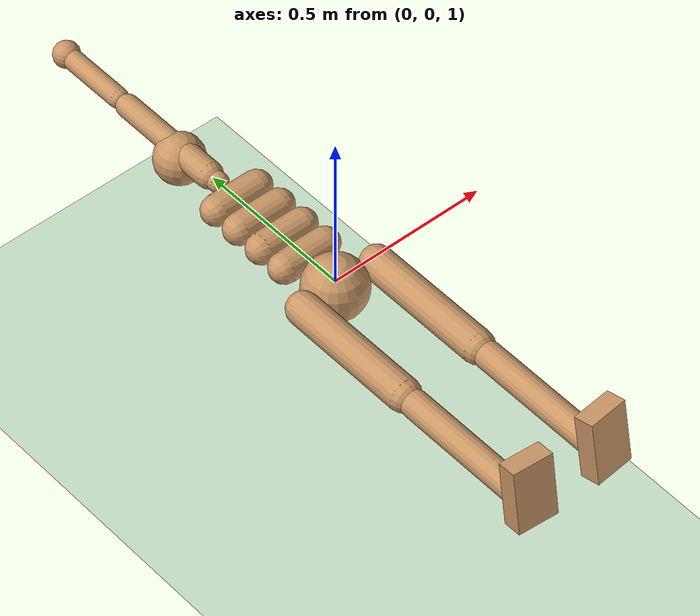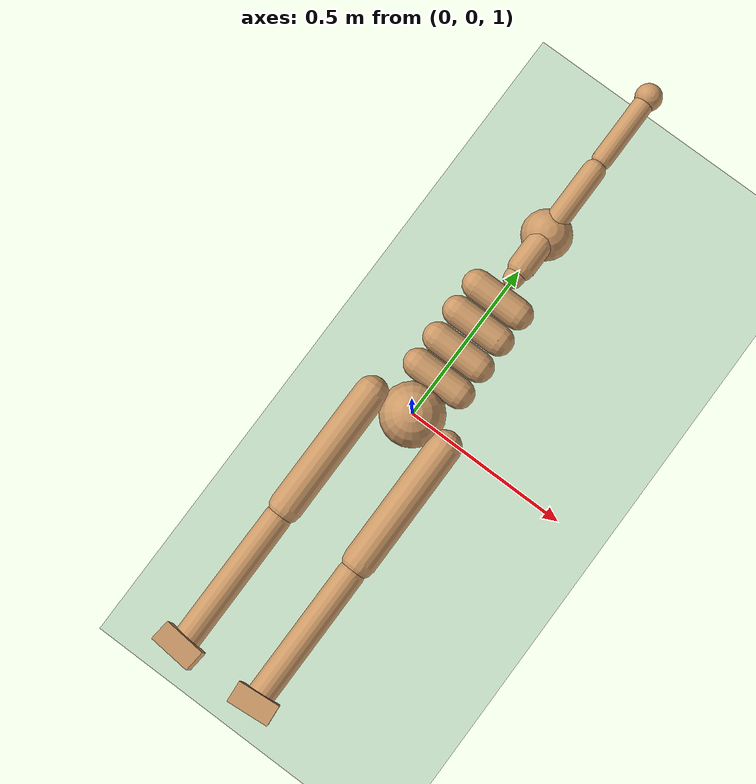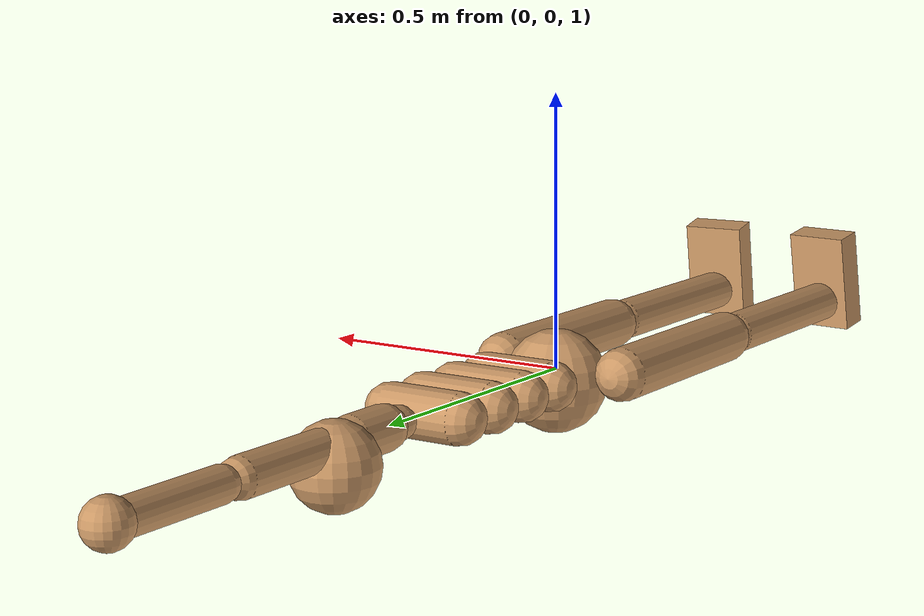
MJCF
<mujoco model="humanoid">
  <compiler angle="degree" inertiafromgeom="true" coordinate="global"/>
  <include file="./common/materials.xml"/>
  <visual>
    <headlight ambient=".4 .4 .4" diffuse=".8 .8 .8" specular="0.1 0.1 0.1"/>
    <map znear=".01"/>
    <quality shadowsize="2048"/>
  </visual>
  <default>
    <joint damping="0.0" armature="0.01" stiffness="0.0" limited="true"/>
    <geom conaffinity="7" condim="1" contype="7" margin="0.001" material="self" rgba="0.8 0.6 .4 1"/>
  </default>
  <statistic extent="3" center="0 0 1"/>
  <option timestep="0.00222222222"/>
  <asset>
    <texture type="skybox" file="./common/sky1.png" gridsize="3 4" gridlayout=".U..LFRB.D.." width="8192" height="8192"/>
    <texture builtin="flat" height="1278" mark="cross" markrgb="1 1 1" name="texgeom" random="0.01" rgb1=".8 .6 .4" rgb2=".8 .6 .4" type="cube" width="127"/>
  </asset>
  <worldbody>
    <light cutoff="100" diffuse="1 1 1" dir="-0 0 -1.3" directional="true" exponent="1" pos="0 0 1.3" specular=".1 .1 .1"/>
    <geom condim="3" friction="1. .1 .1" material="grid" name="floor" pos="0 0 0" rgba=".8 .9 .8 1" size="100 100 .2" type="plane"/>
    <body name="Hips" pos="0.0000 0.0000 1.0000" user="0.0000 0.0003 1.0000">
      <joint armature="0" damping="0" limited="false" name="Hips" pos="0.0000 0.0000 1.0000" stiffness="0" type="free"/>
      <geom pos="0.0000 0.0000 0.9780" size="0.0950" type="sphere"/>
      <body name="RightUpLeg" pos="-0.1272 0.0000 1.0000" user="-0.1272 -0.4343 1.0000">
        <joint axis="0.0000 0.0000 1.0000" name="RightUpLeg_z" pos="-0.1272 0.0000 1.0000" range="-1800.0 1800.0" type="hinge"/>
        <joint axis="1.0000 0.0000 0.0000" name="RightUpLeg_x" pos="-0.1272 0.0000 1.0000" range="-1800.0 1800.0" type="hinge"/>
        <joint axis="0.0000 1.0000 0.0000" name="RightUpLeg_y" pos="-0.1272 0.0000 1.0000" range="-1800.0 1800.0" type="hinge"/>
        <geom contype="1" conaffinity="1" fromto="-0.1272 -0.0200 1.0000 -0.1272 -0.4143 1.0000" size="0.0490" type="capsule"/>
        <body name="RightLeg" pos="-0.1272 -0.4343 1.0000" user="-0.1272 -0.8831 1.0000">
          <joint axis="1.0000 0.0000 0.0000" name="RightLeg_x" pos="-0.1272 -0.4343 1.0000" range="-1800.0 1800.0" type="hinge"/>
          <geom contype="1" conaffinity="1" fromto="-0.1272 -0.4543 1.0000 -0.1272 -0.8631 1.0000" size="0.0400" type="capsule"/>
          <body name="RightFoot" pos="-0.1272 -0.8831 1.0000" user="-0.1272 -0.8831 1.1515">
            <geom contype="1" conaffinity="1" pos="-0.1272 -0.8831 1.0477" size="0.0620 0.0300 0.1000" quat="0.9952 -0.0871 0.0038 -0.0435" type="box"/>
            <joint axis="0.0000 0.0000 1.0000" name="RightFoot_z" pos="-0.1272 -0.8831 1.0000" range="-1800.0 1800.0" type="hinge"/>
            <joint axis="1.0000 0.0000 0.0000" name="RightFoot_x" pos="-0.1272 -0.8831 1.0000" range="-1800.0 1800.0" type="hinge"/>
            <joint axis="0.0000 1.0000 0.0000" name="RightFoot_y" pos="-0.1272 -0.8831 1.0000" range="-1800.0 1800.0" type="hinge"/>
          </body>
        </body>
      </body>
      <body name="LeftUpLeg" pos="0.1272 0.0000 1.0000" user="0.1272 -0.4343 1.0000">
        <joint axis="0.0000 0.0000 1.0000" name="LeftUpLeg_z" pos="0.1272 0.0000 1.0000" range="-1800.0 1800.0" type="hinge"/>
        <joint axis="1.0000 0.0000 0.0000" name="LeftUpLeg_x" pos="0.1272 0.0000 1.0000" range="-1800.0 1800.0" type="hinge"/>
        <joint axis="0.0000 1.0000 0.0000" name="LeftUpLeg_y" pos="0.1272 0.0000 1.0000" range="-1800.0 1800.0" type="hinge"/>
        <geom contype="2" conaffinity="2" fromto="0.1272 -0.0200 1.0000 0.1272 -0.4143 1.0000" size="0.0490" type="capsule"/>
        <body name="LeftLeg" pos="0.1272 -0.4343 1.0000" user="0.1272 -0.8831 1.0000">
          <joint axis="1.0000 0.0000 0.0000" name="LeftLeg_x" pos="0.1272 -0.4343 1.0000" range="-1800.0 1800.0" type="hinge"/>
          <geom contype="2" conaffinity="2" fromto="0.1272 -0.4543 1.0000 0.1272 -0.8631 1.0000" size="0.0400" type="capsule"/>
          <body name="LeftFoot" pos="0.1272 -0.8831 1.0000" user="0.1272 -0.8831 1.1515">
            <geom contype="2" conaffinity="2" pos="0.1272 -0.8831 1.0477" size="0.0620 0.0300 0.1000" quat="0.9952 -0.0871 -0.0038 0.0435" type="box"/>
            <joint axis="0.0000 0.0000 1.0000" name="LeftFoot_z" pos="0.1272 -0.8831 1.0000" range="-1800.0 1800.0" type="hinge"/>
            <joint axis="1.0000 0.0000 0.0000" name="LeftFoot_x" pos="0.1272 -0.8831 1.0000" range="-1800.0 1800.0" type="hinge"/>
            <joint axis="0.0000 1.0000 0.0000" name="LeftFoot_y" pos="0.1272 -0.8831 1.0000" range="-1800.0 1800.0" type="hinge"/>
          </body>
        </body>
      </body>
      <body name="Spine" pos="0.0000 0.0010 1.0000" user="0.0000 0.2469 1.0000">
        <geom fromto="-0.0700 0.1240 1.0000 0.0700 0.1240 1.0000" size="0.0450" type="capsule"/>
        <geom fromto="-0.0700 0.2160 1.0000 0.0700 0.2160 1.0000" size="0.0450" type="capsule"/>
        <joint axis="0.0000 0.0000 1.0000" name="Spine_z" pos="0.0000 0.0010 1.0000" range="-1800.0 1800.0" type="hinge"/>
        <joint axis="1.0000 0.0000 0.0000" name="Spine_x" pos="0.0000 0.0010 1.0000" range="-1800.0 1800.0" type="hinge"/>
        <joint axis="0.0000 1.0000 0.0000" name="Spine_y" pos="0.0000 0.0010 1.0000" range="-1800.0 1800.0" type="hinge"/>
        <body name="Spine1" pos="0.0000 0.2469 1.0000" user="0.0000 0.4954 1.0000">
          <geom fromto="-0.0700 0.3091 1.0000 0.0700 0.3091 1.0000" size="0.0450" type="capsule"/>
          <geom fromto="-0.0700 0.4011 1.0000 0.0700 0.4011 1.0000" size="0.0450" type="capsule"/>
          <joint axis="0.0000 0.0000 1.0000" name="Spine1_z" pos="0.0000 0.2469 1.0000" range="-1800.0 1800.0" type="hinge"/>
          <joint axis="1.0000 0.0000 0.0000" name="Spine1_x" pos="0.0000 0.2469 1.0000" range="-1800.0 1800.0" type="hinge"/>
          <joint axis="0.0000 1.0000 0.0000" name="Spine1_y" pos="0.0000 0.2469 1.0000" range="-1800.0 1800.0" type="hinge"/>
          <body name="Neck" pos="0.0000 0.4954 1.0000" user="0.0000 0.5881 1.0000">
            <joint axis="0.0000 0.0000 1.0000" name="Neck_z" pos="0.0000 0.4954 1.0000" range="-1800.0 1800.0" type="hinge"/>
            <joint axis="1.0000 0.0000 0.0000" name="Neck_x" pos="0.0000 0.4954 1.0000" range="-1800.0 1800.0" type="hinge"/>
            <joint axis="0.0000 1.0000 0.0000" name="Neck_y" pos="0.0000 0.4954 1.0000" range="-1800.0 1800.0" type="hinge"/>
            <geom fromto="0.0000 0.4754 1.0000 0.0000 0.5281 1.0000" size="0.0300" type="capsule"/>
            <body name="Head" pos="0.0000 0.5881 1.0000" user="0.0000 0.7031 1.0000">
              <geom pos="0.0000 0.6401 0.9660" size="0.0750" type="sphere"/>
              <joint axis="0.0000 0.0000 1.0000" name="Head_z" pos="0.0000 0.5881 1.0000" range="-1800.0 1800.0" type="hinge"/>
              <joint axis="1.0000 0.0000 0.0000" name="Head_x" pos="0.0000 0.5881 1.0000" range="-1800.0 1800.0" type="hinge"/>
              <joint axis="0.0000 1.0000 0.0000" name="Head_y" pos="0.0000 0.5881 1.0000" range="-1800.0 1800.0" type="hinge"/>
            </body>
          </body>
          <body name="LeftShoulder" pos="0.0000 0.4954 1.0000" user="0.0000 0.6203 1.0000">
            <joint axis="0.0000 0.0000 1.0000" name="LeftShoulder_z" pos="0.0000 0.4954 1.0000" range="-1800.0 1800.0" type="hinge"/>
            <joint axis="1.0000 0.0000 0.0000" name="LeftShoulder_x" pos="0.0000 0.4954 1.0000" range="-1800.0 1800.0" type="hinge"/>
            <joint axis="0.0000 1.0000 0.0000" name="LeftShoulder_y" pos="0.0000 0.4954 1.0000" range="-1800.0 1800.0" type="hinge"/>
            <geom fromto="0.0000 0.5154 1.0000 0.0000 0.6003 1.0000" size="0.0400" type="capsule"/>
            <body name="LeftArm" pos="0.0000 0.6203 1.0000" user="0.0000 0.8800 1.0000">
              <joint axis="0.0000 0.0000 1.0000" name="LeftArm_z" pos="0.0000 0.6203 1.0000" range="-1800.0 1800.0" type="hinge"/>
              <joint axis="1.0000 0.0000 0.0000" name="LeftArm_x" pos="0.0000 0.6203 1.0000" range="-1800.0 1800.0" type="hinge"/>
              <joint axis="0.0000 1.0000 0.0000" name="LeftArm_y" pos="0.0000 0.6203 1.0000" range="-1800.0 1800.0" type="hinge"/>
              <geom fromto="0.0000 0.6403 1.0000 0.0000 0.8600 1.0000" size="0.0340" type="capsule"/>
              <body name="LeftForeArm" pos="0.0000 0.8800 1.0000" user="0.0000 1.1256 1.0000">
                <joint axis="1.0000 0.0000 0.0000" name="LeftForeArm_x" pos="0.0000 0.8800 1.0000" range="-1800.0 1800.0" type="hinge"/>
                <geom fromto="0.0000 0.9000 1.0000 0.0000 1.1056 1.0000" size="0.0300" type="capsule"/>
                <body name="LeftHand" pos="0.0000 1.1256 1.0000" user="0.0000 1.1256 1.0000">
                  <geom pos="0.0000 1.1256 1.0000" size="0.0400" type="sphere"/>
                  <joint axis="0.0000 0.0000 1.0000" name="LeftHand_z" pos="0.0000 1.1256 1.0000" range="-1800.0 1800.0" type="hinge"/>
                  <joint axis="1.0000 0.0000 0.0000" name="LeftHand_x" pos="0.0000 1.1256 1.0000" range="-1800.0 1800.0" type="hinge"/>
                  <joint axis="0.0000 1.0000 0.0000" name="LeftHand_y" pos="0.0000 1.1256 1.0000" range="-1800.0 1800.0" type="hinge"/>
                </body>
              </body>
            </body>
          </body>
          <body name="RightShoulder" pos="-0.0000 0.4954 1.0000" user="0.0000 0.6203 1.0000">
            <joint axis="0.0000 0.0000 1.0000" name="RightShoulder_z" pos="0.0000 0.4954 1.0000" range="-1800.0 1800.0" type="hinge"/>
            <joint axis="1.0000 0.0000 0.0000" name="RightShoulder_x" pos="0.0000 0.4954 1.0000" range="-1800.0 1800.0" type="hinge"/>
            <joint axis="0.0000 1.0000 0.0000" name="RightShoulder_y" pos="0.0000 0.4954 1.0000" range="-1800.0 1800.0" type="hinge"/>
            <geom fromto="-0.0000 0.5154 1.0000 -0.0000 0.6003 1.0000" size="0.0400" type="capsule"/>
            <body name="RightArm" pos="-0.0000 0.6203 1.0000" user="0.0000 0.8800 1.0000">
              <joint axis="0.0000 0.0000 1.0000" name="RightArm_z" pos="0.0000 0.6203 1.0000" range="-1800.0 1800.0" type="hinge"/>
              <joint axis="1.0000 0.0000 0.0000" name="RightArm_x" pos="0.0000 0.6203 1.0000" range="-1800.0 1800.0" type="hinge"/>
              <joint axis="0.0000 1.0000 0.0000" name="RightArm_y" pos="0.0000 0.6203 1.0000" range="-1800.0 1800.0" type="hinge"/>
              <geom fromto="-0.0000 0.6403 1.0000 -0.0000 0.8600 1.0000" size="0.0340" type="capsule"/>
              <body name="RightForeArm" pos="-0.0000 0.8800 1.0000" user="0.0000 1.1256 1.0000">
                <joint axis="1.0000 0.0000 0.0000" name="RightForeArm_x" pos="0.0000 0.8800 1.0000" range="-1800.0 1800.0" type="hinge"/>
                <geom fromto="-0.0000 0.9000 1.0000 -0.0000 1.1056 1.0000" size="0.0300" type="capsule"/>
                <body name="RightHand" pos="-0.0000 1.1256 1.0000" user="0.0000 1.1256 1.0000">
                  <geom pos="-0.0000 1.1256 1.0000" size="0.0400" type="sphere"/>
                  <joint axis="0.0000 0.0000 1.0000" name="RightHand_z" pos="0.0000 1.1256 1.0000" range="-1800.0 1800.0" type="hinge"/>
                  <joint axis="1.0000 0.0000 0.0000" name="RightHand_x" pos="0.0000 1.1256 1.0000" range="-1800.0 1800.0" type="hinge"/>
                  <joint axis="0.0000 1.0000 0.0000" name="RightHand_y" pos="0.0000 1.1256 1.0000" range="-1800.0 1800.0" type="hinge"/>
                </body>
              </body>
            </body>
          </body>
        </body>
      </body>
    </body>
  </worldbody>
  <actuator>
    <motor gear="1" joint="RightUpLeg_z" name="RightUpLeg_z"/>
    <motor gear="1" joint="RightUpLeg_x" name="RightUpLeg_x"/>
    <motor gear="1" joint="RightUpLeg_y" name="RightUpLeg_y"/>
    <motor gear="1" joint="RightLeg_x" name="RightLeg_x"/>
    <motor gear="1" joint="RightFoot_z" name="RightFoot_z"/>
    <motor gear="1" joint="RightFoot_x" name="RightFoot_x"/>
    <motor gear="1" joint="RightFoot_y" name="RightFoot_y"/>
    <motor gear="1" joint="LeftUpLeg_z" name="LeftUpLeg_z"/>
    <motor gear="1" joint="LeftUpLeg_x" name="LeftUpLeg_x"/>
    <motor gear="1" joint="LeftUpLeg_y" name="LeftUpLeg_y"/>
    <motor gear="1" joint="LeftLeg_x" name="LeftLeg_x"/>
    <motor gear="1" joint="LeftFoot_z" name="LeftFoot_z"/>
    <motor gear="1" joint="LeftFoot_x" name="LeftFoot_x"/>
    <motor gear="1" joint="LeftFoot_y" name="LeftFoot_y"/>
    <motor gear="1" joint="Spine_z" name="Spine_z"/>
    <motor gear="1" joint="Spine_x" name="Spine_x"/>
    <motor gear="1" joint="Spine_y" name="Spine_y"/>
    <motor gear="1" joint="Spine1_z" name="Spine1_z"/>
    <motor gear="1" joint="Spine1_x" name="Spine1_x"/>
    <motor gear="1" joint="Spine1_y" name="Spine1_y"/>
    <motor gear="1" joint="Neck_z" name="Neck_z"/>
    <motor gear="1" joint="Neck_x" name="Neck_x"/>
    <motor gear="1" joint="Neck_y" name="Neck_y"/>
    <motor gear="1" joint="Head_z" name="Head_z"/>
    <motor gear="1" joint="Head_x" name="Head_x"/>
    <motor gear="1" joint="Head_y" name="Head_y"/>
    <motor gear="1" joint="LeftShoulder_z" name="LeftShoulder_z"/>
    <motor gear="1" joint="LeftShoulder_x" name="LeftShoulder_x"/>
    <motor gear="1" joint="LeftShoulder_y" name="LeftShoulder_y"/>
    <motor gear="1" joint="LeftArm_z" name="LeftArm_z"/>
    <motor gear="1" joint="LeftArm_x" name="LeftArm_x"/>
    <motor gear="1" joint="LeftArm_y" name="LeftArm_y"/>
    <motor gear="1" joint="LeftForeArm_x" name="LeftForeArm_x"/>
    <motor gear="1" joint="LeftHand_z" name="LeftHand_z"/>
    <motor gear="1" joint="LeftHand_x" name="LeftHand_x"/>
    <motor gear="1" joint="LeftHand_y" name="LeftHand_y"/>
    <motor gear="1" joint="RightShoulder_z" name="RightShoulder_z"/>
    <motor gear="1" joint="RightShoulder_x" name="RightShoulder_x"/>
    <motor gear="1" joint="RightShoulder_y" name="RightShoulder_y"/>
    <motor gear="1" joint="RightArm_z" name="RightArm_z"/>
    <motor gear="1" joint="RightArm_x" name="RightArm_x"/>
    <motor gear="1" joint="RightArm_y" name="RightArm_y"/>
    <motor gear="1" joint="RightForeArm_x" name="RightForeArm_x"/>
    <motor gear="1" joint="RightHand_z" name="RightHand_z"/>
    <motor gear="1" joint="RightHand_x" name="RightHand_x"/>
    <motor gear="1" joint="RightHand_y" name="RightHand_y"/>
  </actuator>
</mujoco>

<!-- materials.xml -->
<!--
Common textures, colors and materials to be used throughout this suite. Some
materials such as xxx_highlight are activated on occurence of certain events,
for example receiving a positive reward.
-->
<mujoco>
  <asset>
    <texture name="grid" type="2d" builtin="checker" rgb1=".1 .2 .3" rgb2=".2 .3 .4" width="300" height="300" mark="edge" markrgb=".2 .3 .4"/>
    <material name="grid" texture="grid" texrepeat="1 1" texuniform="true" reflectance=".2"/>
    <texture builtin="checker" height="100" name="texplane" rgb1="0 0 0" rgb2=".8 .8 .8" type="2d" width="100"/>
    <texture name="grass" file="./common/grass.png" type="2d"/>

    <texture name="grid_new" type="2d" builtin="checker" rgb1=".1 .3 .2" rgb2=".2 .4 .3" width="1000" height="1000" mark="none" markrgb=".8 .6 .4"/>
    <material name="grid_new" texture="grid_new" texrepeat="0.2 0.2" texuniform="true" reflectance=".2"/>
    <material name="MatPlane" reflectance="0.5" shininess="1" specular="1" texrepeat="60 60" texture="texplane"/>
    <material name="GrassPlane" reflectance="0.0" shininess="1" specular="1" texrepeat="400 400" texture="grass"/>
    <material name="self" rgba=".7 .5 .3 1"/>
    <material name="self_default" rgba=".7 .5 .3 1"/>
    <material name="self_highlight" rgba="0 .5 .3 1"/>
    <material name="effector" rgba=".7 .4 .2 1"/>
    <material name="effector_default" rgba=".7 .4 .2 1"/>
    <material name="effector_highlight" rgba="0 .5 .3 1"/>
    <material name="decoration" rgba=".3 .5 .7 1"/>
    <material name="eye" rgba="0 .2 1 1"/>
    <material name="target" rgba=".6 .3 .3 1"/>
    <material name="target_default" rgba=".6 .3 .3 1"/>
    <material name="target_highlight" rgba=".6 .3 .3 .4"/>
    <material name="expert" rgba=".6 .3 .3 .4"/>
  </asset>
</mujoco>
